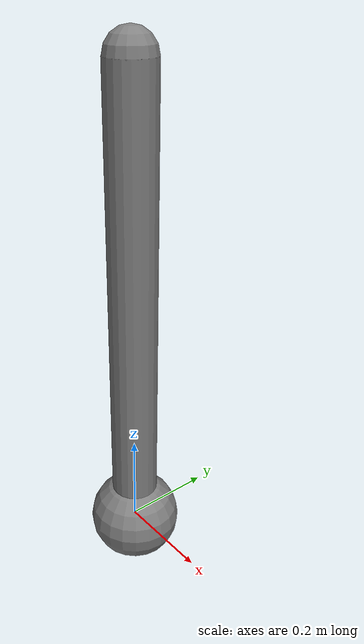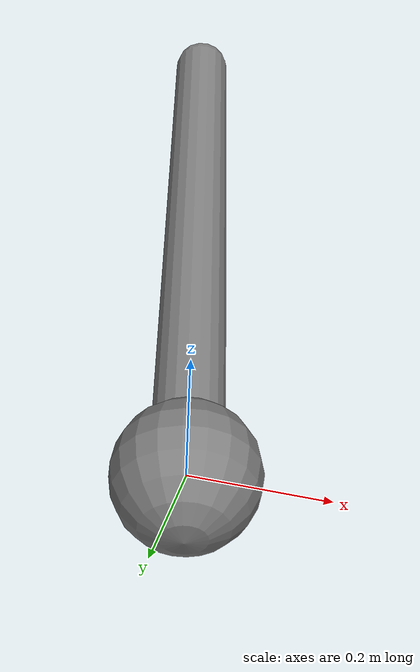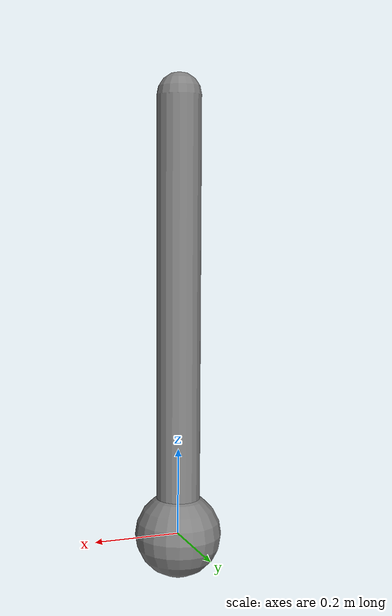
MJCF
<mujoco>

  <option iterations="50" />
  <custom>
      <!-- brax custom params -->
      <numeric data="0" name="matrix_inv_iterations"/>
      <numeric data="20" name="solver_maxls"/>
  </custom>

  <default>
      <geom contype="0" conaffinity="0" />
  </default>

  <worldbody>
    <geom name="base" pos="0 0 0" euler="0 0 0" size="0.1" type="sphere"/>

    <body name="link1" pos="0 0 0.5">
      <inertial pos="0 0 0" euler="0 0 0" mass="1.0" diaginertia="0.083958 0.083958 0.00125" />
      <joint axis="1 0 0" name="joint1" pos="0 0 -0.5" type="hinge"/>
      <geom name="clink1" size="0.05 0.5" type="capsule"/>
    </body>

  </worldbody>

  <actuator>
    <motor gear="1" joint="joint1" name="torque1"/>
  </actuator>

</mujoco>
